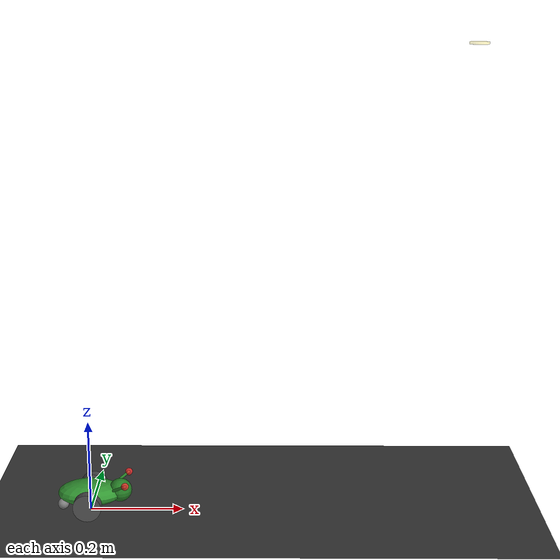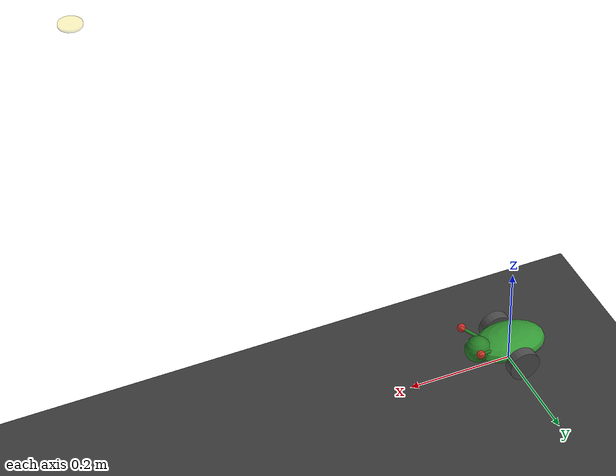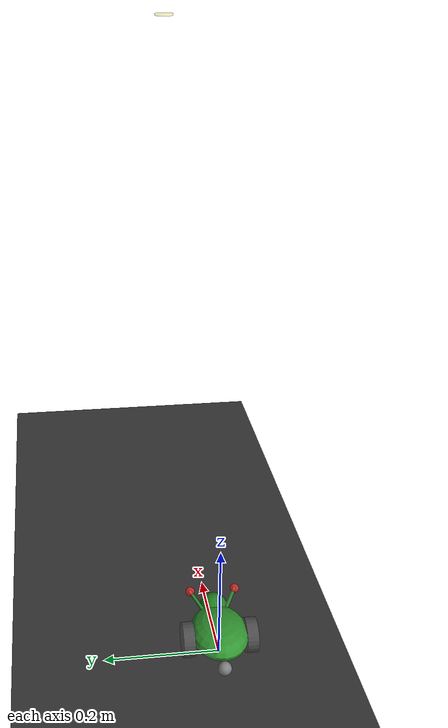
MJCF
<mujoco model="braitenberg_bug">

  <option timestep="0.002" integrator="implicitfast" gravity="0 0 -9.81"/>

  <default>
    <default class="bug">
      <geom rgba="0.2 0.6 0.2 1" friction="1.0 0.005 0.001"/>
      <joint damping="0.02"/>
    </default>
    <default class="wheel">
      <geom type="cylinder" size="0.03 0.01" rgba="0.3 0.3 0.3 1"
            friction="1.5 0.005 0.001" condim="6"/>
      <joint type="hinge" axis="0 1 0" damping="0.001" frictionloss="0.001"/>
    </default>
    <default class="sensor_geom">
      <geom type="sphere" size="0.008" rgba="1.0 0.2 0.2 0.8" mass="0.001"/>
    </default>
  </default>

  <asset>
    <texture name="grid_tex" type="2d" builtin="checker" width="512" height="512"
             rgb1="0.25 0.25 0.25" rgb2="0.2 0.2 0.2"/>
    <material name="grid_mat" texture="grid_tex" texrepeat="8 8" specular="0.1"/>
    <material name="marker_mat" rgba="1.0 0.9 0.2 0.3" emission="1"/>
  </asset>

  <worldbody>
    <!-- Ground -->
    <geom name="floor" type="plane" size="1.5 1.5 0.01" material="grid_mat" pos="0 0 0"/>

    <!-- Light source — mocap body (repositioned by test script) -->
    <!-- No big sphere. Just a spotlight that casts a bright pool on the ground. -->
    <body name="light_source" mocap="true" pos="0.8 0.0 1.0">
      <!-- Tiny flat disc as a barely-visible marker -->
      <geom name="light_marker" type="cylinder" size="0.02 0.002" material="marker_mat"
            contype="0" conaffinity="0" euler="0 0 0"/>
      <!-- Very bright spotlight high up — illuminates most of the floor,
           bright center fading monotonically to dark edges -->
      <light name="target_light" pos="0 0 0" dir="0 0 -1"
             diffuse="400 320 200" specular="1 1 1"
             cutoff="85" exponent="3" attenuation="100 100 100"/>
    </body>

    <!-- ═══ Bug Robot ═══ -->
    <body name="chassis" pos="0 0 0.04">
      <freejoint name="chassis_free"/>

      <!-- Main body: ellipsoid for bug shape -->
      <geom name="body_shell" class="bug" type="ellipsoid" size="0.07 0.05 0.025"
            pos="0 0 0" mass="0.3"/>

      <!-- Head (visual) -->
      <geom name="head" class="bug" type="sphere" size="0.025"
            pos="0.065 0 0.005" rgba="0.15 0.5 0.15 1" mass="0.02"/>

      <!-- Left antenna / sensor mount (visual marker for sensor location) -->
      <geom name="antenna_left" type="capsule" size="0.003" fromto="0.05 0.02 0.01 0.08 0.04 0.03"
            rgba="0.15 0.5 0.15 1" mass="0.001"/>
      <site name="light_sensor_left" pos="0.08 0.04 0.03" size="0.008"
            rgba="1.0 0.2 0.2 0.8" type="sphere"/>

      <!-- Right antenna / sensor mount -->
      <geom name="antenna_right" type="capsule" size="0.003" fromto="0.05 -0.02 0.01 0.08 -0.04 0.03"
            rgba="0.15 0.5 0.15 1" mass="0.001"/>
      <site name="light_sensor_right" pos="0.08 -0.04 0.03" size="0.008"
            rgba="1.0 0.2 0.2 0.8" type="sphere"/>

      <!-- IMU site at center -->
      <site name="imu_site" pos="0 0 0" size="0.005"/>

      <!-- ── Left wheel ── -->
      <body name="left_wheel" pos="0 0.055 -0.01">
        <joint name="left_wheel_joint" class="wheel"/>
        <geom name="left_wheel_geom" class="wheel" euler="90 0 0"/>
      </body>

      <!-- ── Right wheel ── -->
      <body name="right_wheel" pos="0 -0.055 -0.01">
        <joint name="right_wheel_joint" class="wheel"/>
        <geom name="right_wheel_geom" class="wheel" euler="90 0 0"/>
      </body>

      <!-- ── Rear caster ball ── -->
      <body name="caster_mount" pos="-0.06 0 -0.015">
        <geom name="caster_axle" type="sphere" size="0.005" mass="0.005" rgba="0.4 0.4 0.4 0"/>
        <joint name="caster_yaw" type="hinge" axis="0 0 1" damping="0.0001"/>
        <body name="caster_ball_body" pos="0 0 -0.013">
          <joint name="caster_roll" type="ball" damping="0.0001"/>
          <geom name="caster_ball" type="sphere" size="0.012"
                rgba="0.5 0.5 0.5 1" friction="0.1 0.005 0.001" mass="0.01"
                condim="3"/>
        </body>
      </body>
    </body>

    <!-- Dim ambient — so the spotlight pool is clearly visible -->
    <light pos="0 0 3" dir="0 0 -1" diffuse="0.08 0.08 0.08" ambient="0.05 0.05 0.05"/>
  </worldbody>

  <!-- ═══ Actuators ═══ -->
  <actuator>
    <!-- Velocity-controlled wheels -->
    <velocity name="left_wheel_vel"  joint="left_wheel_joint"  kv="1.0"
              ctrlrange="-20 20" forcerange="-3 3"/>
    <velocity name="right_wheel_vel" joint="right_wheel_joint" kv="1.0"
              ctrlrange="-20 20" forcerange="-3 3"/>
  </actuator>

  <!-- ═══ Sensors ═══ -->
  <sensor>
    <!-- Light sensor positions (world frame) — used to compute distance to light -->
    <framepos name="light_left_pos"  objtype="site" objname="light_sensor_left"/>
    <framepos name="light_right_pos" objtype="site" objname="light_sensor_right"/>

    <!-- Light source position (world frame) -->
    <framepos name="light_source_pos" objtype="body" objname="light_source"/>

    <!-- Wheel velocity feedback -->
    <jointvel name="left_wheel_vel_sensor"  joint="left_wheel_joint"/>
    <jointvel name="right_wheel_vel_sensor" joint="right_wheel_joint"/>

    <!-- IMU -->
    <accelerometer name="imu_accel" site="imu_site"/>
    <gyro          name="imu_gyro"  site="imu_site"/>

    <!-- Chassis position and orientation (for logging/debug) -->
    <framepos  name="chassis_pos"  objtype="body" objname="chassis"/>
    <framequat name="chassis_quat" objtype="body" objname="chassis"/>
  </sensor>

  <!-- ═══ Keyframes ═══ -->
  <keyframe>
    <!-- Robot at origin facing +x; light at (0.8, 0, 1.0) -->
    <key name="home"
         qpos="0 0 0.04 1 0 0 0  0 0  0 0 0 0 0"
         mpos="0.8 0.0 1.0"/>
  </keyframe>
</mujoco>
